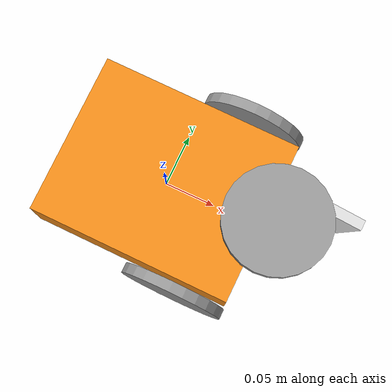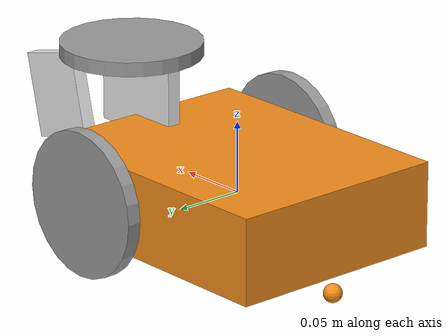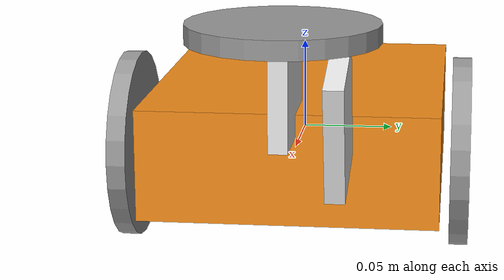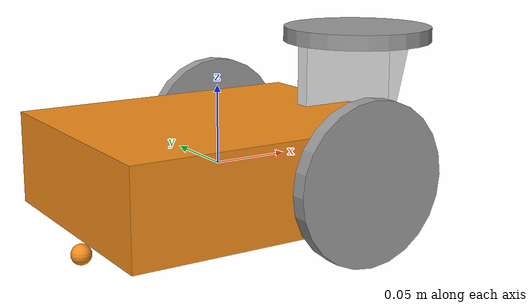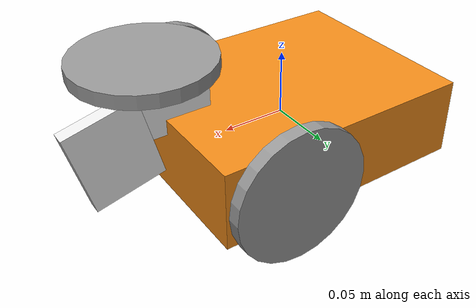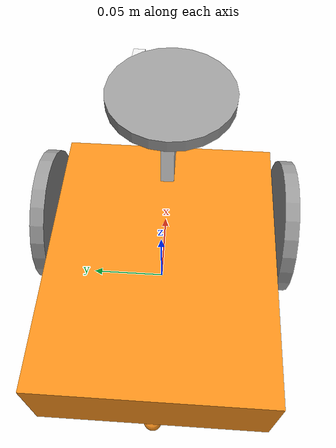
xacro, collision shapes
<?xml version="1.0"?>
<!-- PuzzleBot differential drive -->
<robot name="puzzlebot" xmlns:xacro="http://www.ros.org/wiki/xacro">

	<!-- files for gazebo costumization -->
	<xacro:include filename="$(find puzzlebot_gazebo)/urdf/materials.xacro" />
	<xacro:include filename="$(find puzzlebot_gazebo)/urdf/parameters.xacro" />
	<xacro:include filename="$(find puzzlebot_gazebo)/urdf/puzzlebot.gazebo" />
	<xacro:include filename="$(find puzzlebot_gazebo)/urdf/macros.xacro" />

	<!-- Dummy link to fiz robot chassis -->
	<link name="base_link">
		<pose>0 0 0 0 0 0</pose>
	</link>

	<joint name="base_link_to_chassis" type="fixed">
		<parent link="base_link" />
		<child link="chassis" />
	</joint>

	<link name="chassis">
		<pose>0 0 0 0 0 0</pose>
		<visual>

			<!-- with mesh  -->
			<origin xyz="0 0 0" rpy="${PI/2} 0 ${PI/2}" />
			<geometry>
				<mesh filename="file://${mesh_chassis}" />
			</geometry>
		</visual>

		<collision name="collision_chassis">
			<origin rpy="0 0 0" xyz="0 0 0" />
			<geometry>
				<box size="${chassisX} ${chassisY} ${chassisZ}" />
			</geometry>
		</collision>
		<inertial>
			<mass value="${chassisMass}" />
			<xacro:box_inertia m="${chassisMass}" x="${chassisX}" y="${chassisY}" z="${chassisZ}" />
		</inertial>

		<!-- agregar caster wheel en frame -->
		<collision>
			<origin xyz="-0.095 0 ${-0.0435}" rpy="0 0 0" />
			<geometry>
				<sphere radius="${casterRadius}" />
			</geometry>
			<surface>
				<friction>
					<ode>
						<slip1>0.0</slip1>
						<slip2>0.0</slip2>
					</ode>
				</friction>
			</surface>
		</collision>

		<visual>
			<origin xyz="-0.095 0 -0.0435" rpy="0 0 0" />
			<geometry>
				<sphere radius="${casterRadius}" />
			</geometry>
		</visual>

	</link>

	<!--RIGHT
	WHEEL -->
	<link name="right_wheel">
		<visual>
			<origin xyz="0 0 0" rpy="-${PI/2} 0 0" />
			<geometry>
				<!-- with mesh-->
				<mesh filename="file://${mesh_wheel}" />
			</geometry>
		</visual>

		<collision>
			<origin xyz="0 0 0 " rpy="-${PI/2} 0 0" />
			<geometry>
				<cylinder length="${wheelHeight}" radius="${wheelRadius+0.0010032}" />
			</geometry>
		</collision>

		<inertial>
			<mass value="${wheelMass}" />
			<origin xyz="0 0 0" rpy="${PI/2} 0 0" />
			<xacro:wheel_inertia r="${wheelRadius}" l="${wheelHeight}" m="${wheelMass}" />
		</inertial>

	</link>

	<!-- LEFT WHEEL -->
	<link name="left_wheel">
		<visual>
			<geometry>
				<!-- with mesh-->
				<mesh filename="file://${mesh_wheel}" />
			</geometry>
			<origin xyz="0 0 0" rpy="${PI/2} 0 0" />
		</visual>

		<collision>
			<origin xyz="0 0 0" rpy="${PI/2} 0 0" />
			<geometry>
				<cylinder length="${wheelHeight}" radius="${wheelRadius+0.0010032}" />
			</geometry>
		</collision>

		<inertial>
			<mass value="${wheelMass}" />
			<origin xyz="0 0 0" rpy="${PI/2} 0 0" />
			<xacro:wheel_inertia r="${wheelRadius}" l="${wheelHeight}" m="${wheelMass}" />
		</inertial>
	</link>

	<!-- CAMERA-->
	<link name="camera">
		<inertial>
			<origin rpy="0 0 0" xyz="0 0 0" />
			<mass value="0.007" />
			<inertia ixx="0.166667" ixy="0" ixz="0" iyy="0.166667" iyz="0" izz="0.166667" />
			<!-- ad camera inertia -->
		</inertial>

		<collision name="collision_chassis">
			<origin rpy="0 0 0" xyz="0 0 0" />
			<geometry>
				<box size="0.07 0.01 0.06" />
			</geometry>
		</collision>

		<visual>

			<!-- with mesh-->
			<origin rpy="${PI/2} 0 ${PI/2}" xyz="0 0 0" />
			<geometry>
				<mesh filename="file://${mesh_camera}" />
			</geometry>
		</visual>
	</link>

	<link name="camera_frame_optical" />

	<!-- LIDAR-->
	<link name="lidar">
		<inertial>
			<mass value="0.1" />
			<origin xyz="0 0 0" />
			<inertia ixx="0.01" ixy="0.0" ixz="0.0"
					 iyy="0.01" iyz="0.0"
					 izz="0.01" />
		</inertial>

		<collision>
			<origin xyz="-0.06 0.0 -0.04" rpy="0 0 0" />
			<geometry>
				<cylinder length="0.01" radius="0.05"/>
			</geometry>
		</collision>

        <visual>
			<origin rpy="${PI/2} 0 0" xyz="0.07 -0.013 -0.04" />
            <geometry>
                <mesh filename="file://${mesh_lidar}" />
            </geometry>
        </visual>

		<![CDATA[
        <collision>
			<origin rpy="0 0 0" xyz="0 0 0" />

			<geometry>
				<cylinder length="0.01" radius="0.5" />
			</geometry>
        </collision>

		<inertial>
			<origin rpy="0 0 0" xyz="0 0 0" />
			<mass value="0.000" />
			<inertia ixx="0.166667" ixy="0" ixz="0" iyy="0.166667" iyz="0" izz="0.166667" />
			<!-- ad camera inertia -->
		</inertial>]]>
    </link>

	<!-- GRIPPER -->
	 <link name="gripper">
		    <inertial>
		    	    <origin rpy="0 0 0" xyz="0 0 0"/>
		          <mass value="0.007"/>
		          <inertia ixx="0.166667" ixy="0" ixz="0" iyy="0.166667" iyz="0" izz="0.166667"/>
		          <!-- ad camera inertia -->
		    </inertial>

			<collision name="collision_chassis">
		    	    <origin rpy="0 0 0" xyz="0 0 0"/>
		          <geometry>
		               <box size="0.05 0.01 0.06" />
		          </geometry>
		    </collision>

		    <visual>

		         <!-- with mesh-->
		          <origin rpy="${PI/1.8} 0.07 ${-PI/2.25}" xyz="0.06 0.03 -0.06"/>
		          <geometry>
		          	<mesh filename="file://${mesh_gripper}" scale="0.0009 0.0009 0.0009" />
		          </geometry>

		    </visual>

  </link>

	<!-- JOINTS  -->

	<joint name="base_to_right_w" type="continuous">
		<parent link="chassis" />
		<child link="right_wheel" />
		<origin xyz="0.05 -0.09 0.0" />
		<axis xyz="0 1 0" rpy="0 0 0" />
	</joint>

	<joint name="base_to_left_w" type="continuous">
		<parent link="chassis" />
		<child link="left_wheel" />
		<origin xyz="0.05 0.09 0" />
		<axis xyz="0 1 0" rpy="0 0 0" />
	</joint>

	<joint name="camera_to_base" type="fixed">
		<parent link="chassis" />
		<child link="camera" />
		<origin xyz="0.1 0 0.048" rpy="0.0 0 0.0" />
	</joint>

	<joint name="camera_frame_to_camera" type="fixed">
		<origin xyz="0 0 0" rpy="${-pi/2} 0 ${-pi/2}" />
		<parent link="camera" />
		<child link="camera_frame_optical" />
	</joint>

	<joint name="lidar_to_base" type="fixed">
        <parent link="chassis"/>
        <child link="lidar"/>
        <origin xyz="0.05 0 0.115" rpy="0 0 ${PI}"/>
    </joint>

<joint name="gripper_to_base" type="fixed">
	  <parent link="chassis" />
	  <child link="gripper" />
	  <origin xyz="0.149 0.031 .038" rpy= "0.0 0.24 0.0" />
  </joint>

	<!-- TRANSMISSIONS (For a more complex model and it represents actuator attributes) -->
	<transmission name="right_wheel_trans">
		<type>transmission_interface/SimpleTransmission</type>
		<joint name="base_to_right_w">
			<hardwareInterface>hardware_interface/EffortJointInterface</hardwareInterface>
		</joint>
		<actuator name="right_wheel_motor">
			<mechanicalReduction>34</mechanicalReduction>
			<hardwareInterface>hardware_interface/EffortJointInterface</hardwareInterface>
		</actuator>
	</transmission>

	<transmission name="left_wheel_trans">
		<type>transmission_interface/SimpleTransmission</type>
		<joint name="base_to_left_w">
			<hardwareInterface>hardware_interface/EffortJointInterface</hardwareInterface>
		</joint>
		<actuator name="left_wheel_motor">
			<mechanicalReduction>34</mechanicalReduction>
			<hardwareInterface>hardware_interface/EffortJointInterface</hardwareInterface>
		</actuator>
	</transmission>
</robot>

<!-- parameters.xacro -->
<robot xmlns:xacro="http://www.ros.org/wiki/xacro">

<!--parameters for gazebo properties-->
<xacro:property name="PI" value="3.1415926535897931"/>

<xacro:property name="chassisX" value="0.2"/>
<xacro:property name="chassisY" value="0.16"/>
<xacro:property name="chassisZ" value="0.06"/>
<xacro:property name="chassisMass" value="1.219"/>

<xacro:property name="casterRadius" value="0.0065"/>
<xacro:property name="casterMass" value="0.012"/>

<xacro:property name="wheelHeight" value="0.01"/>
<xacro:property name="wheelRadius" value="0.05"/>
<xacro:property name="wheelPos" value="0.05"/>
<xacro:property name="wheelDistance" value="0.08"/>
<xacro:property name="wheelMass" value="0.03"/>

<xacro:property name="cameraSize" value="0.07"/>
<xacro:property name="cameraMass" value="0.018"/>
<xacro:property name="cameraX" value="0.02"/>
<xacro:property name="cameraY" value="0.04"/>
<xacro:property name="cameraZ" value="0.06"/>

<xacro:property name="mesh_chassis"  value="$(find puzzlebot_gazebo)/meshes/chassis.stl" />
<xacro:property name="mesh_wheel"  value="$(find puzzlebot_gazebo)/meshes/wheel.stl" />
<xacro:property name="mesh_camera"  value="$(find puzzlebot_gazebo)/meshes/camera.stl" />
<xacro:property name="mesh_lidar"  value="$(find puzzlebot_gazebo)/meshes/lidar.stl" />
<xacro:property name="mesh_gripper" value="$(find puzzlebot_gazebo)/meshes/GripperSTL.stl" />

</robot>
